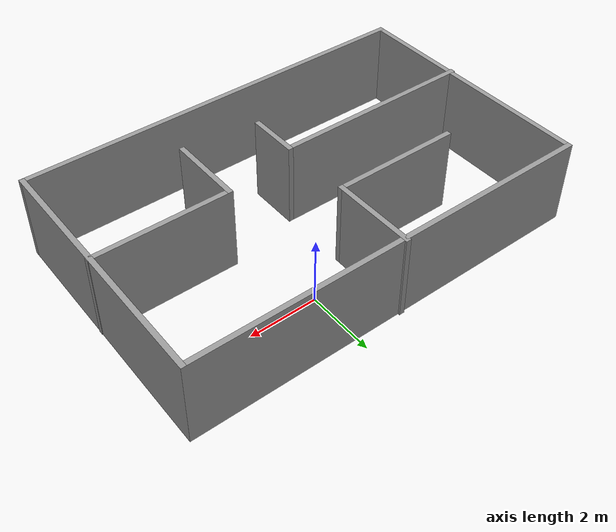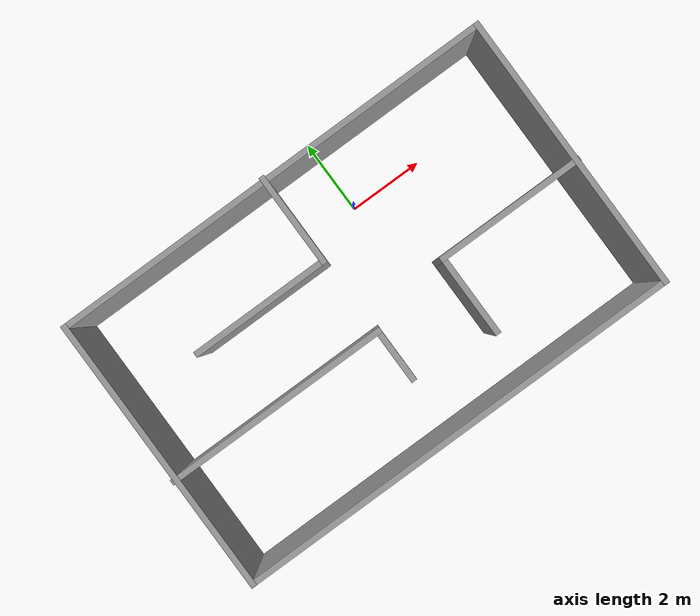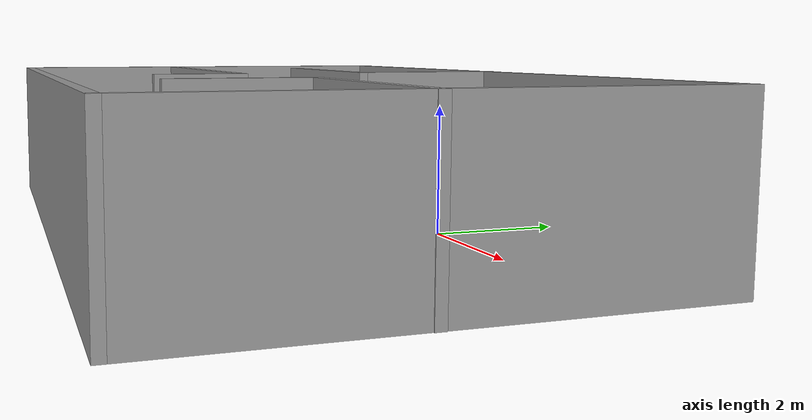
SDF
<?xml version='1.0'?>
<sdf version='1.7'>
  <model name='room'>
    <pose>-1.23812 -2.09395 0 0 -0 0</pose>
    <link name='Wall_10'>
      <collision name='Wall_10_Collision'>
        <geometry>
          <box>
            <size>7.5 0.15 2.5</size>
          </box>
        </geometry>
        <pose>0 0 1.25 0 -0 0</pose>
      </collision>
      <visual name='Wall_10_Visual'>
        <pose>0 0 1.25 0 -0 0</pose>
        <geometry>
          <box>
            <size>7.5 0.15 2.5</size>
          </box>
        </geometry>
        <material>
          <script>
            <uri>file://media/materials/scripts/gazebo.material</uri>
            <name>Gazebo/Grey</name>
          </script>
          <ambient>1 1 1 1</ambient>
        </material>
        <meta>
          <layer>0</layer>
        </meta>
      </visual>
      <pose>5.942 -0.020972 0 0 -0 -1.5708</pose>
    </link>
    <link name='Wall_12'>
      <collision name='Wall_12_Collision'>
        <geometry>
          <box>
            <size>7.5 0.15 2.5</size>
          </box>
        </geometry>
        <pose>0 0 1.25 0 -0 0</pose>
      </collision>
      <visual name='Wall_12_Visual'>
        <pose>0 0 1.25 0 -0 0</pose>
        <geometry>
          <box>
            <size>7.5 0.15 2.5</size>
          </box>
        </geometry>
        <material>
          <script>
            <uri>file://media/materials/scripts/gazebo.material</uri>
            <name>Gazebo/Grey</name>
          </script>
          <ambient>1 1 1 1</ambient>
        </material>
        <meta>
          <layer>0</layer>
        </meta>
      </visual>
      <pose>-5.90801 -0.020972 0 0 -0 -1.5708</pose>
    </link>
    <link name='Wall_18'>
      <collision name='Wall_18_Collision'>
        <geometry>
          <box>
            <size>2.5 0.15 2.5</size>
          </box>
        </geometry>
        <pose>0 0 1.25 0 -0 0</pose>
      </collision>
      <visual name='Wall_18_Visual'>
        <pose>0 0 1.25 0 -0 0</pose>
        <geometry>
          <box>
            <size>2.5 0.15 2.5</size>
          </box>
        </geometry>
        <material>
          <script>
            <uri>file://media/materials/scripts/gazebo.material</uri>
            <name>Gazebo/Grey</name>
          </script>
          <ambient>1 1 1 1</ambient>
        </material>
        <meta>
          <layer>0</layer>
        </meta>
      </visual>
      <pose>-0.170954 2.53263 0 0 -0 -1.5708</pose>
    </link>
    <link name='Wall_19'>
      <collision name='Wall_19_Collision'>
        <geometry>
          <box>
            <size>3.75 0.15 2.5</size>
          </box>
        </geometry>
        <pose>0 0 1.25 0 -0 0</pose>
      </collision>
      <visual name='Wall_19_Visual'>
        <pose>0 0 1.25 0 -0 0</pose>
        <geometry>
          <box>
            <size>3.75 0.15 2.5</size>
          </box>
        </geometry>
        <material>
          <script>
            <uri>file://media/materials/scripts/gazebo.material</uri>
            <name>Gazebo/Grey</name>
          </script>
          <ambient>1 1 1 1</ambient>
        </material>
        <meta>
          <layer>0</layer>
        </meta>
      </visual>
      <pose>-1.97095 1.35763 0 0 -0 3.14159</pose>
    </link>
    <link name='Wall_21'>
      <collision name='Wall_21_Collision'>
        <geometry>
          <box>
            <size>6 0.15 2.5</size>
          </box>
        </geometry>
        <pose>0 0 1.25 0 -0 0</pose>
      </collision>
      <visual name='Wall_21_Visual'>
        <pose>0 0 1.25 0 -0 0</pose>
        <geometry>
          <box>
            <size>6 0.15 2.5</size>
          </box>
        </geometry>
        <material>
          <script>
            <uri>file://media/materials/scripts/gazebo.material</uri>
            <name>Gazebo/Grey</name>
          </script>
          <ambient>1 1 1 1</ambient>
        </material>
        <meta>
          <layer>0</layer>
        </meta>
      </visual>
      <pose>-3.0321 -0.710875 0 0 -0 0</pose>
    </link>
    <link name='Wall_22'>
      <collision name='Wall_22_Collision'>
        <geometry>
          <box>
            <size>1.5 0.15 2.5</size>
          </box>
        </geometry>
        <pose>0 0 1.25 0 -0 0</pose>
      </collision>
      <visual name='Wall_22_Visual'>
        <pose>0 0 1.25 0 -0 0</pose>
        <geometry>
          <box>
            <size>1.5 0.15 2.5</size>
          </box>
        </geometry>
        <material>
          <script>
            <uri>file://media/materials/scripts/gazebo.material</uri>
            <name>Gazebo/Grey</name>
          </script>
          <ambient>1 1 1 1</ambient>
        </material>
        <meta>
          <layer>0</layer>
        </meta>
      </visual>
      <pose>-0.107097 -1.38587 0 0 -0 -1.5708</pose>
    </link>
    <link name='Wall_24'>
      <collision name='Wall_24_Collision'>
        <geometry>
          <box>
            <size>4 0.15 2.5</size>
          </box>
        </geometry>
        <pose>0 0 1.25 0 -0 0</pose>
      </collision>
      <visual name='Wall_24_Visual'>
        <pose>0 0 1.25 0 -0 0</pose>
        <geometry>
          <box>
            <size>4 0.15 2.5</size>
          </box>
        </geometry>
        <material>
          <script>
            <uri>file://media/materials/scripts/gazebo.material</uri>
            <name>Gazebo/Grey</name>
          </script>
          <ambient>1 1 1 1</ambient>
        </material>
        <meta>
          <layer>0</layer>
        </meta>
      </visual>
      <pose>4.0321 -0.237463 0 0 -0 3.14159</pose>
    </link>
    <link name='Wall_25'>
      <collision name='Wall_25_Collision'>
        <geometry>
          <box>
            <size>2.25 0.15 2.5</size>
          </box>
        </geometry>
        <pose>0 0 1.25 0 -0 0</pose>
      </collision>
      <visual name='Wall_25_Visual'>
        <pose>0 0 1.25 0 -0 0</pose>
        <geometry>
          <box>
            <size>2.25 0.15 2.5</size>
          </box>
        </geometry>
        <material>
          <script>
            <uri>file://media/materials/scripts/gazebo.material</uri>
            <name>Gazebo/Grey</name>
          </script>
          <ambient>1 1 1 1</ambient>
        </material>
        <meta>
          <layer>0</layer>
        </meta>
      </visual>
      <pose>2.1071 -1.28746 0 0 -0 -1.5708</pose>
    </link>
    <link name='Wall_4'>
      <collision name='Wall_4_Collision'>
        <geometry>
          <box>
            <size>12 0.15 2.5</size>
          </box>
        </geometry>
        <pose>0 0 1.25 0 -0 0</pose>
      </collision>
      <visual name='Wall_4_Visual'>
        <pose>0 0 1.25 0 -0 0</pose>
        <geometry>
          <box>
            <size>12 0.15 2.5</size>
          </box>
        </geometry>
        <material>
          <script>
            <uri>file://media/materials/scripts/gazebo.material</uri>
            <name>Gazebo/Grey</name>
          </script>
          <ambient>1 1 1 1</ambient>
        </material>
        <meta>
          <layer>0</layer>
        </meta>
      </visual>
      <pose>0.016996 3.65403 0 0 -0 0</pose>
    </link>
    <link name='Wall_8'>
      <collision name='Wall_8_Collision'>
        <geometry>
          <box>
            <size>12 0.15 2.5</size>
          </box>
        </geometry>
        <pose>0 0 1.25 0 -0 0</pose>
      </collision>
      <visual name='Wall_8_Visual'>
        <pose>0 0 1.25 0 -0 0</pose>
        <geometry>
          <box>
            <size>12 0.15 2.5</size>
          </box>
        </geometry>
        <material>
          <script>
            <uri>file://media/materials/scripts/gazebo.material</uri>
            <name>Gazebo/Grey</name>
          </script>
          <ambient>1 1 1 1</ambient>
        </material>
        <meta>
          <layer>0</layer>
        </meta>
      </visual>
      <pose>0.016996 -3.70763 0 0 -0 3.14159</pose>
    </link>
    <static>1</static>
  </model>
</sdf>
